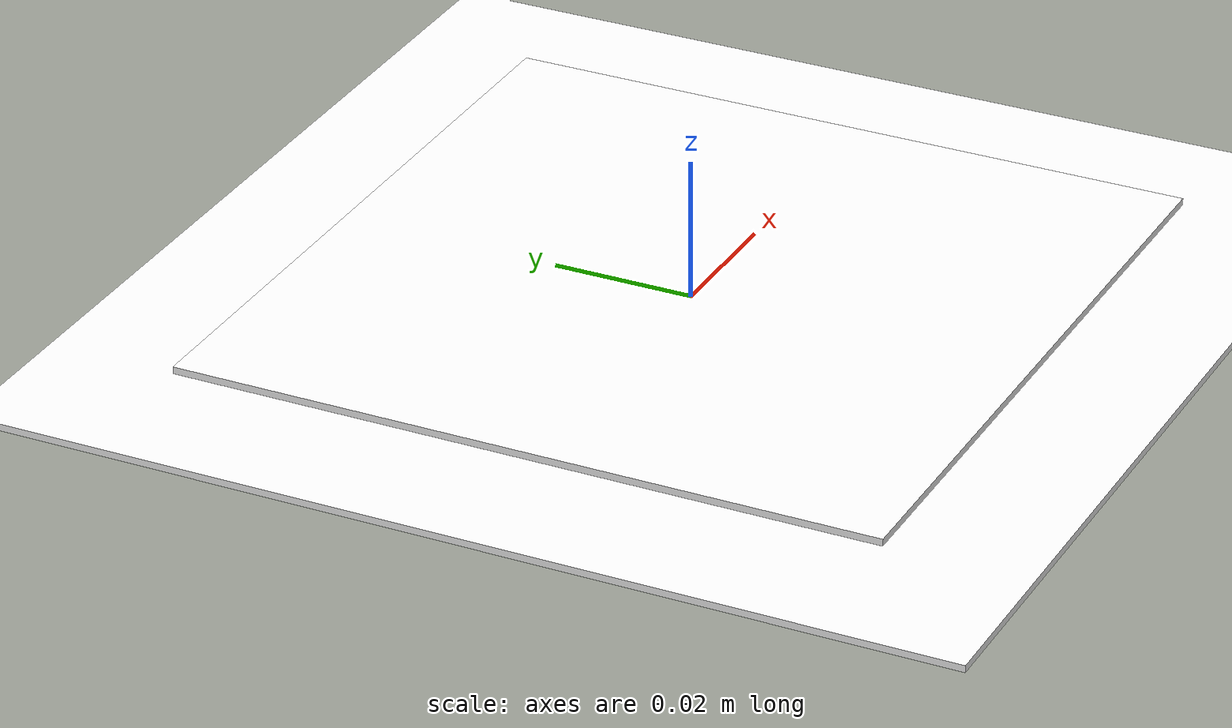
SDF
<?xml version="1.0" ?>
<sdf version="1.9">
  <model name="e_aruco">
    <static>true</static>
    <link name="link">

      <!-- Outer panel : DICT_7X7_50 ID=5, 70×70cm à z=0 -->
      <visual name="outer_panel">
        <pose>0 0 0 0 0 0</pose>
        <geometry>
          <box>
            <size>0.70 0.70 0.001</size>
          </box>
        </geometry>
        <material>
          <ambient>1 1 1 1</ambient>
          <diffuse>1 1 1 1</diffuse>
          <pbr>
            <metal>
              <albedo_map>materials/textures/outer_aruco.png</albedo_map>
              <roughness>0.9</roughness>
              <metalness>0.0</metalness>
            </metal>
          </pbr>
        </material>
      </visual>

      <!-- Inner panel : DICT_4X4_50 ID=17, 10×10cm à z=2mm (anti z-fighting) -->
      <visual name="inner_panel">
        <pose>0 0 0.002 0 0 0</pose>
        <geometry>
          <box>
            <size>0.10 0.10 0.001</size>
          </box>
        </geometry>
        <material>
          <ambient>1 1 1 1</ambient>
          <diffuse>1 1 1 1</diffuse>
          <pbr>
            <metal>
              <albedo_map>materials/textures/inner_aruco.png</albedo_map>
              <roughness>0.9</roughness>
              <metalness>0.0</metalness>
            </metal>
          </pbr>
        </material>
      </visual>

      <collision name="collision">
        <pose>0 0 0 0 0 0</pose>
        <geometry>
          <box>
            <size>0.70 0.70 0.001</size>
          </box>
        </geometry>
      </collision>

    </link>
  </model>
</sdf>
